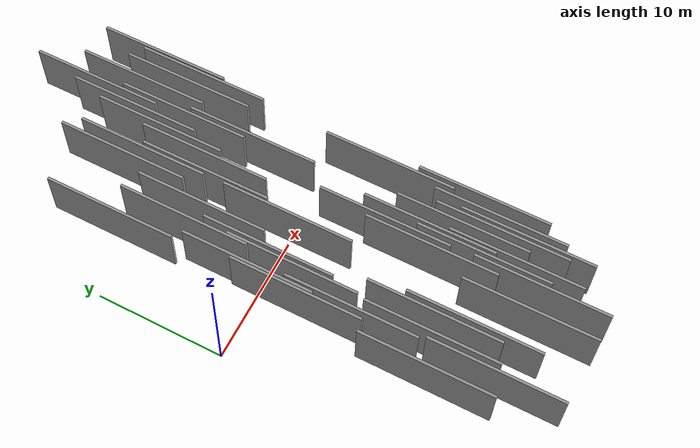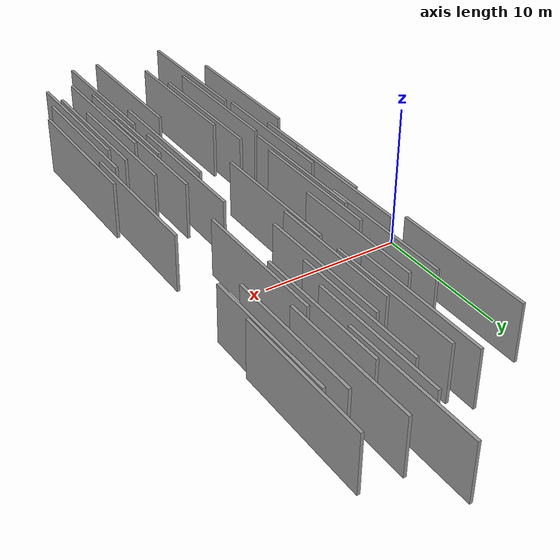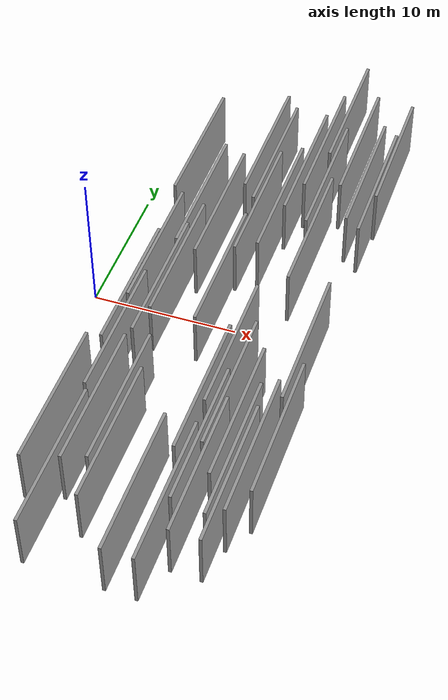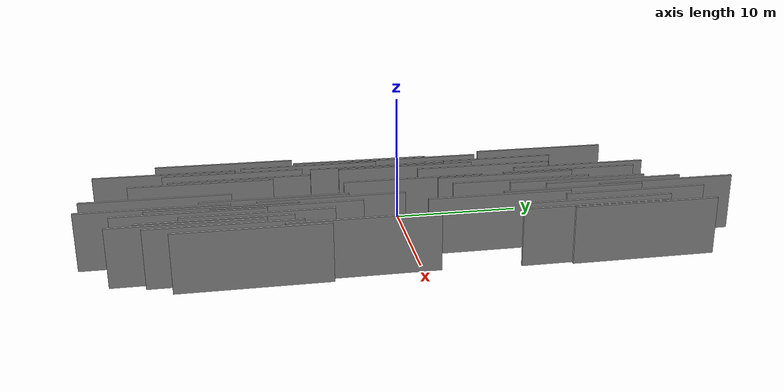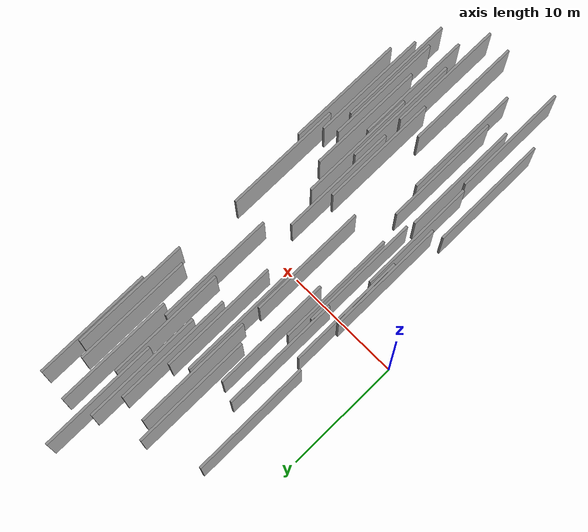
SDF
<sdf version="1.6">
 <world name="default">
  <scene>
   <sky><clouds><speed>12</speed></clouds></sky>
   <ambient>0.4 0.4 0.4 1</ambient>
   <background>0.7 0.7 0.7 1</background>
   <shadows>1</shadows>
  </scene>
  <gravity>0 0 -9.8066</gravity>
  <magnetic_field>6e-06 2.3e-05 -4.2e-05</magnetic_field>
  <physics default="0" name="default_physics" type="ode">
   <ode>
    <solver>
     <type>quick</type>
     <iters>10</iters>
     <sor>1.0</sor>
     <use_dynamic_moi_rescaling>0</use_dynamic_moi_rescaling>
    </solver>
    <constraints>
     <cfm>0</cfm>
     <erp>0.2</erp>
     <contact_max_correcting_vel>100</contact_max_correcting_vel>
     <contact_surface_layer>0.001</contact_surface_layer>
    </constraints>
   </ode>
   <max_step_size>0.004</max_step_size>
   <real_time_factor>1</real_time_factor>
   <real_time_update_rate>250</real_time_update_rate>
  </physics>
  <light name="sun" type="directional">
   <pose>0 0 10 0 0 0</pose>
   <diffuse>0.8 0.8 0.8 1</diffuse>
   <specular>0.2 0.2 0.2 1</specular>
   <attenuation>
    <range>1000</range>
    <constant>0.9</constant>
    <linear>0.01</linear>
    <quadratic>0.001</quadratic>
   </attenuation>
   <direction>-0.5 0.1 -0.9</direction>
  </light>
  <model name="grey_wall_1">
   <static>1</static>
   <pose>12.0063 13.5859 2.5 0.000000 0.000000 1.570796</pose>
   <link name="link">
    <pose>0 0 2.00 0 0 0</pose>
    <collision name="collision"><geometry><box><size>10.00 0.2 4.00</size></box></geometry></collision>
    <visual name="visual">
     <cast_shadows>0</cast_shadows>
     <geometry><box><size>10.00 0.2 4.00</size></box></geometry>
     <material>
      <script>
       <uri>model://grey_wall/materials/scripts</uri>
       <uri>model://grey_wall/materials/textures</uri>
       <name>vrc/grey_wall</name>
      </script>
     </material>
    </visual>
   </link>
  </model>
  <model name="grey_wall_2">
   <static>1</static>
   <pose>5.9091 -2.4661 2.5 0.000000 0.000000 1.570796</pose>
   <link name="link">
    <pose>0 0 2.00 0 0 0</pose>
    <collision name="collision"><geometry><box><size>10.00 0.2 4.00</size></box></geometry></collision>
    <visual name="visual">
     <cast_shadows>0</cast_shadows>
     <geometry><box><size>10.00 0.2 4.00</size></box></geometry>
     <material>
      <script>
       <uri>model://grey_wall/materials/scripts</uri>
       <uri>model://grey_wall/materials/textures</uri>
       <name>vrc/grey_wall</name>
      </script>
     </material>
    </visual>
   </link>
  </model>
  <model name="grey_wall_3">
   <static>1</static>
   <pose>13.2497 -15.8099 2.5 0.000000 0.000000 1.570796</pose>
   <link name="link">
    <pose>0 0 2.00 0 0 0</pose>
    <collision name="collision"><geometry><box><size>10.00 0.2 4.00</size></box></geometry></collision>
    <visual name="visual">
     <cast_shadows>0</cast_shadows>
     <geometry><box><size>10.00 0.2 4.00</size></box></geometry>
     <material>
      <script>
       <uri>model://grey_wall/materials/scripts</uri>
       <uri>model://grey_wall/materials/textures</uri>
       <name>vrc/grey_wall</name>
      </script>
     </material>
    </visual>
   </link>
  </model>
  <model name="grey_wall_4">
   <static>1</static>
   <pose>9.2239 -0.3779 2.5 0.000000 0.000000 1.570796</pose>
   <link name="link">
    <pose>0 0 2.00 0 0 0</pose>
    <collision name="collision"><geometry><box><size>10.00 0.2 4.00</size></box></geometry></collision>
    <visual name="visual">
     <cast_shadows>0</cast_shadows>
     <geometry><box><size>10.00 0.2 4.00</size></box></geometry>
     <material>
      <script>
       <uri>model://grey_wall/materials/scripts</uri>
       <uri>model://grey_wall/materials/textures</uri>
       <name>vrc/grey_wall</name>
      </script>
     </material>
    </visual>
   </link>
  </model>
  <model name="grey_wall_5">
   <static>1</static>
   <pose>12.7220 17.2323 2.5 0.000000 0.000000 1.570796</pose>
   <link name="link">
    <pose>0 0 2.00 0 0 0</pose>
    <collision name="collision"><geometry><box><size>10.00 0.2 4.00</size></box></geometry></collision>
    <visual name="visual">
     <cast_shadows>0</cast_shadows>
     <geometry><box><size>10.00 0.2 4.00</size></box></geometry>
     <material>
      <script>
       <uri>model://grey_wall/materials/scripts</uri>
       <uri>model://grey_wall/materials/textures</uri>
       <name>vrc/grey_wall</name>
      </script>
     </material>
    </visual>
   </link>
  </model>
  <model name="grey_wall_6">
   <static>1</static>
   <pose>5.1721 -17.8928 2.5 0.000000 0.000000 1.570796</pose>
   <link name="link">
    <pose>0 0 2.00 0 0 0</pose>
    <collision name="collision"><geometry><box><size>10.00 0.2 4.00</size></box></geometry></collision>
    <visual name="visual">
     <cast_shadows>0</cast_shadows>
     <geometry><box><size>10.00 0.2 4.00</size></box></geometry>
     <material>
      <script>
       <uri>model://grey_wall/materials/scripts</uri>
       <uri>model://grey_wall/materials/textures</uri>
       <name>vrc/grey_wall</name>
      </script>
     </material>
    </visual>
   </link>
  </model>
  <model name="grey_wall_7">
   <static>1</static>
   <pose>11.5215 -10.2824 2.5 0.000000 0.000000 1.570796</pose>
   <link name="link">
    <pose>0 0 2.00 0 0 0</pose>
    <collision name="collision"><geometry><box><size>10.00 0.2 4.00</size></box></geometry></collision>
    <visual name="visual">
     <cast_shadows>0</cast_shadows>
     <geometry><box><size>10.00 0.2 4.00</size></box></geometry>
     <material>
      <script>
       <uri>model://grey_wall/materials/scripts</uri>
       <uri>model://grey_wall/materials/textures</uri>
       <name>vrc/grey_wall</name>
      </script>
     </material>
    </visual>
   </link>
  </model>
  <model name="grey_wall_8">
   <static>1</static>
   <pose>10.8162 7.1400 2.5 0.000000 0.000000 1.570796</pose>
   <link name="link">
    <pose>0 0 2.00 0 0 0</pose>
    <collision name="collision"><geometry><box><size>10.00 0.2 4.00</size></box></geometry></collision>
    <visual name="visual">
     <cast_shadows>0</cast_shadows>
     <geometry><box><size>10.00 0.2 4.00</size></box></geometry>
     <material>
      <script>
       <uri>model://grey_wall/materials/scripts</uri>
       <uri>model://grey_wall/materials/textures</uri>
       <name>vrc/grey_wall</name>
      </script>
     </material>
    </visual>
   </link>
  </model>
  <model name="grey_wall_9">
   <static>1</static>
   <pose>9.5311 6.3362 2.5 0.000000 0.000000 1.570796</pose>
   <link name="link">
    <pose>0 0 2.00 0 0 0</pose>
    <collision name="collision"><geometry><box><size>10.00 0.2 4.00</size></box></geometry></collision>
    <visual name="visual">
     <cast_shadows>0</cast_shadows>
     <geometry><box><size>10.00 0.2 4.00</size></box></geometry>
     <material>
      <script>
       <uri>model://grey_wall/materials/scripts</uri>
       <uri>model://grey_wall/materials/textures</uri>
       <name>vrc/grey_wall</name>
      </script>
     </material>
    </visual>
   </link>
  </model>
  <model name="grey_wall_10">
   <static>1</static>
   <pose>14.3169 14.2576 2.5 0.000000 0.000000 1.570796</pose>
   <link name="link">
    <pose>0 0 2.00 0 0 0</pose>
    <collision name="collision"><geometry><box><size>10.00 0.2 4.00</size></box></geometry></collision>
    <visual name="visual">
     <cast_shadows>0</cast_shadows>
     <geometry><box><size>10.00 0.2 4.00</size></box></geometry>
     <material>
      <script>
       <uri>model://grey_wall/materials/scripts</uri>
       <uri>model://grey_wall/materials/textures</uri>
       <name>vrc/grey_wall</name>
      </script>
     </material>
    </visual>
   </link>
  </model>
  <model name="grey_wall_11">
   <static>1</static>
   <pose>12.9523 -9.4667 2.5 0.000000 0.000000 1.570796</pose>
   <link name="link">
    <pose>0 0 2.00 0 0 0</pose>
    <collision name="collision"><geometry><box><size>10.00 0.2 4.00</size></box></geometry></collision>
    <visual name="visual">
     <cast_shadows>0</cast_shadows>
     <geometry><box><size>10.00 0.2 4.00</size></box></geometry>
     <material>
      <script>
       <uri>model://grey_wall/materials/scripts</uri>
       <uri>model://grey_wall/materials/textures</uri>
       <name>vrc/grey_wall</name>
      </script>
     </material>
    </visual>
   </link>
  </model>
  <model name="grey_wall_12">
   <static>1</static>
   <pose>7.1455 -12.5662 2.5 0.000000 0.000000 1.570796</pose>
   <link name="link">
    <pose>0 0 2.00 0 0 0</pose>
    <collision name="collision"><geometry><box><size>10.00 0.2 4.00</size></box></geometry></collision>
    <visual name="visual">
     <cast_shadows>0</cast_shadows>
     <geometry><box><size>10.00 0.2 4.00</size></box></geometry>
     <material>
      <script>
       <uri>model://grey_wall/materials/scripts</uri>
       <uri>model://grey_wall/materials/textures</uri>
       <name>vrc/grey_wall</name>
      </script>
     </material>
    </visual>
   </link>
  </model>
  <model name="grey_wall_13">
   <static>1</static>
   <pose>11.3913 11.1319 2.5 0.000000 0.000000 1.570796</pose>
   <link name="link">
    <pose>0 0 2.00 0 0 0</pose>
    <collision name="collision"><geometry><box><size>10.00 0.2 4.00</size></box></geometry></collision>
    <visual name="visual">
     <cast_shadows>0</cast_shadows>
     <geometry><box><size>10.00 0.2 4.00</size></box></geometry>
     <material>
      <script>
       <uri>model://grey_wall/materials/scripts</uri>
       <uri>model://grey_wall/materials/textures</uri>
       <name>vrc/grey_wall</name>
      </script>
     </material>
    </visual>
   </link>
  </model>
  <model name="grey_wall_14">
   <static>1</static>
   <pose>4.3407 -3.6009 2.5 0.000000 0.000000 1.570796</pose>
   <link name="link">
    <pose>0 0 2.00 0 0 0</pose>
    <collision name="collision"><geometry><box><size>10.00 0.2 4.00</size></box></geometry></collision>
    <visual name="visual">
     <cast_shadows>0</cast_shadows>
     <geometry><box><size>10.00 0.2 4.00</size></box></geometry>
     <material>
      <script>
       <uri>model://grey_wall/materials/scripts</uri>
       <uri>model://grey_wall/materials/textures</uri>
       <name>vrc/grey_wall</name>
      </script>
     </material>
    </visual>
   </link>
  </model>
  <model name="grey_wall_15">
   <static>1</static>
   <pose>10.2185 -18.1284 2.5 0.000000 0.000000 1.570796</pose>
   <link name="link">
    <pose>0 0 2.00 0 0 0</pose>
    <collision name="collision"><geometry><box><size>10.00 0.2 4.00</size></box></geometry></collision>
    <visual name="visual">
     <cast_shadows>0</cast_shadows>
     <geometry><box><size>10.00 0.2 4.00</size></box></geometry>
     <material>
      <script>
       <uri>model://grey_wall/materials/scripts</uri>
       <uri>model://grey_wall/materials/textures</uri>
       <name>vrc/grey_wall</name>
      </script>
     </material>
    </visual>
   </link>
  </model>
  <model name="grey_wall_16">
   <static>1</static>
   <pose>9.1690 11.2508 2.5 0.000000 0.000000 1.570796</pose>
   <link name="link">
    <pose>0 0 2.00 0 0 0</pose>
    <collision name="collision"><geometry><box><size>10.00 0.2 4.00</size></box></geometry></collision>
    <visual name="visual">
     <cast_shadows>0</cast_shadows>
     <geometry><box><size>10.00 0.2 4.00</size></box></geometry>
     <material>
      <script>
       <uri>model://grey_wall/materials/scripts</uri>
       <uri>model://grey_wall/materials/textures</uri>
       <name>vrc/grey_wall</name>
      </script>
     </material>
    </visual>
   </link>
  </model>
  <model name="grey_wall_17">
   <static>1</static>
   <pose>16.8760 13.9712 2.5 0.000000 0.000000 1.570796</pose>
   <link name="link">
    <pose>0 0 2.00 0 0 0</pose>
    <collision name="collision"><geometry><box><size>10.00 0.2 4.00</size></box></geometry></collision>
    <visual name="visual">
     <cast_shadows>0</cast_shadows>
     <geometry><box><size>10.00 0.2 4.00</size></box></geometry>
     <material>
      <script>
       <uri>model://grey_wall/materials/scripts</uri>
       <uri>model://grey_wall/materials/textures</uri>
       <name>vrc/grey_wall</name>
      </script>
     </material>
    </visual>
   </link>
  </model>
  <model name="grey_wall_18">
   <static>1</static>
   <pose>3.8398 10.6690 2.5 0.000000 0.000000 1.570796</pose>
   <link name="link">
    <pose>0 0 2.00 0 0 0</pose>
    <collision name="collision"><geometry><box><size>10.00 0.2 4.00</size></box></geometry></collision>
    <visual name="visual">
     <cast_shadows>0</cast_shadows>
     <geometry><box><size>10.00 0.2 4.00</size></box></geometry>
     <material>
      <script>
       <uri>model://grey_wall/materials/scripts</uri>
       <uri>model://grey_wall/materials/textures</uri>
       <name>vrc/grey_wall</name>
      </script>
     </material>
    </visual>
   </link>
  </model>
  <model name="grey_wall_19">
   <static>1</static>
   <pose>13.1487 10.1873 2.5 0.000000 0.000000 1.570796</pose>
   <link name="link">
    <pose>0 0 2.00 0 0 0</pose>
    <collision name="collision"><geometry><box><size>10.00 0.2 4.00</size></box></geometry></collision>
    <visual name="visual">
     <cast_shadows>0</cast_shadows>
     <geometry><box><size>10.00 0.2 4.00</size></box></geometry>
     <material>
      <script>
       <uri>model://grey_wall/materials/scripts</uri>
       <uri>model://grey_wall/materials/textures</uri>
       <name>vrc/grey_wall</name>
      </script>
     </material>
    </visual>
   </link>
  </model>
  <model name="grey_wall_20">
   <static>1</static>
   <pose>16.6032 10.5202 2.5 0.000000 0.000000 1.570796</pose>
   <link name="link">
    <pose>0 0 2.00 0 0 0</pose>
    <collision name="collision"><geometry><box><size>10.00 0.2 4.00</size></box></geometry></collision>
    <visual name="visual">
     <cast_shadows>0</cast_shadows>
     <geometry><box><size>10.00 0.2 4.00</size></box></geometry>
     <material>
      <script>
       <uri>model://grey_wall/materials/scripts</uri>
       <uri>model://grey_wall/materials/textures</uri>
       <name>vrc/grey_wall</name>
      </script>
     </material>
    </visual>
   </link>
  </model>
  <model name="grey_wall_21">
   <static>1</static>
   <pose>16.7167 -11.8867 2.5 0.000000 0.000000 1.570796</pose>
   <link name="link">
    <pose>0 0 2.00 0 0 0</pose>
    <collision name="collision"><geometry><box><size>10.00 0.2 4.00</size></box></geometry></collision>
    <visual name="visual">
     <cast_shadows>0</cast_shadows>
     <geometry><box><size>10.00 0.2 4.00</size></box></geometry>
     <material>
      <script>
       <uri>model://grey_wall/materials/scripts</uri>
       <uri>model://grey_wall/materials/textures</uri>
       <name>vrc/grey_wall</name>
      </script>
     </material>
    </visual>
   </link>
  </model>
  <model name="grey_wall_22">
   <static>1</static>
   <pose>3.4434 -13.6741 2.5 0.000000 0.000000 1.570796</pose>
   <link name="link">
    <pose>0 0 2.00 0 0 0</pose>
    <collision name="collision"><geometry><box><size>10.00 0.2 4.00</size></box></geometry></collision>
    <visual name="visual">
     <cast_shadows>0</cast_shadows>
     <geometry><box><size>10.00 0.2 4.00</size></box></geometry>
     <material>
      <script>
       <uri>model://grey_wall/materials/scripts</uri>
       <uri>model://grey_wall/materials/textures</uri>
       <name>vrc/grey_wall</name>
      </script>
     </material>
    </visual>
   </link>
  </model>
  <model name="grey_wall_23">
   <static>1</static>
   <pose>12.0294 -6.4774 2.5 0.000000 0.000000 1.570796</pose>
   <link name="link">
    <pose>0 0 2.00 0 0 0</pose>
    <collision name="collision"><geometry><box><size>10.00 0.2 4.00</size></box></geometry></collision>
    <visual name="visual">
     <cast_shadows>0</cast_shadows>
     <geometry><box><size>10.00 0.2 4.00</size></box></geometry>
     <material>
      <script>
       <uri>model://grey_wall/materials/scripts</uri>
       <uri>model://grey_wall/materials/textures</uri>
       <name>vrc/grey_wall</name>
      </script>
     </material>
    </visual>
   </link>
  </model>
  <model name="grey_wall_24">
   <static>1</static>
   <pose>12.1651 -18.1737 2.5 0.000000 0.000000 1.570796</pose>
   <link name="link">
    <pose>0 0 2.00 0 0 0</pose>
    <collision name="collision"><geometry><box><size>10.00 0.2 4.00</size></box></geometry></collision>
    <visual name="visual">
     <cast_shadows>0</cast_shadows>
     <geometry><box><size>10.00 0.2 4.00</size></box></geometry>
     <material>
      <script>
       <uri>model://grey_wall/materials/scripts</uri>
       <uri>model://grey_wall/materials/textures</uri>
       <name>vrc/grey_wall</name>
      </script>
     </material>
    </visual>
   </link>
  </model>
  <model name="grey_wall_25">
   <static>1</static>
   <pose>15.1448 -15.8815 2.5 0.000000 0.000000 1.570796</pose>
   <link name="link">
    <pose>0 0 2.00 0 0 0</pose>
    <collision name="collision"><geometry><box><size>10.00 0.2 4.00</size></box></geometry></collision>
    <visual name="visual">
     <cast_shadows>0</cast_shadows>
     <geometry><box><size>10.00 0.2 4.00</size></box></geometry>
     <material>
      <script>
       <uri>model://grey_wall/materials/scripts</uri>
       <uri>model://grey_wall/materials/textures</uri>
       <name>vrc/grey_wall</name>
      </script>
     </material>
    </visual>
   </link>
  </model>
  <model name="grey_wall_26">
   <static>1</static>
   <pose>16.2576 -4.8201 2.5 0.000000 0.000000 1.570796</pose>
   <link name="link">
    <pose>0 0 2.00 0 0 0</pose>
    <collision name="collision"><geometry><box><size>10.00 0.2 4.00</size></box></geometry></collision>
    <visual name="visual">
     <cast_shadows>0</cast_shadows>
     <geometry><box><size>10.00 0.2 4.00</size></box></geometry>
     <material>
      <script>
       <uri>model://grey_wall/materials/scripts</uri>
       <uri>model://grey_wall/materials/textures</uri>
       <name>vrc/grey_wall</name>
      </script>
     </material>
    </visual>
   </link>
  </model>
  <model name="grey_wall_27">
   <static>1</static>
   <pose>4.8833 -7.4848 2.5 0.000000 0.000000 1.570796</pose>
   <link name="link">
    <pose>0 0 2.00 0 0 0</pose>
    <collision name="collision"><geometry><box><size>10.00 0.2 4.00</size></box></geometry></collision>
    <visual name="visual">
     <cast_shadows>0</cast_shadows>
     <geometry><box><size>10.00 0.2 4.00</size></box></geometry>
     <material>
      <script>
       <uri>model://grey_wall/materials/scripts</uri>
       <uri>model://grey_wall/materials/textures</uri>
       <name>vrc/grey_wall</name>
      </script>
     </material>
    </visual>
   </link>
  </model>
  <model name="grey_wall_28">
   <static>1</static>
   <pose>15.5816 11.2316 2.5 0.000000 0.000000 1.570796</pose>
   <link name="link">
    <pose>0 0 2.00 0 0 0</pose>
    <collision name="collision"><geometry><box><size>10.00 0.2 4.00</size></box></geometry></collision>
    <visual name="visual">
     <cast_shadows>0</cast_shadows>
     <geometry><box><size>10.00 0.2 4.00</size></box></geometry>
     <material>
      <script>
       <uri>model://grey_wall/materials/scripts</uri>
       <uri>model://grey_wall/materials/textures</uri>
       <name>vrc/grey_wall</name>
      </script>
     </material>
    </visual>
   </link>
  </model>
  <model name="grey_wall_29">
   <static>1</static>
   <pose>5.7026 -13.0424 2.5 0.000000 0.000000 1.570796</pose>
   <link name="link">
    <pose>0 0 2.00 0 0 0</pose>
    <collision name="collision"><geometry><box><size>10.00 0.2 4.00</size></box></geometry></collision>
    <visual name="visual">
     <cast_shadows>0</cast_shadows>
     <geometry><box><size>10.00 0.2 4.00</size></box></geometry>
     <material>
      <script>
       <uri>model://grey_wall/materials/scripts</uri>
       <uri>model://grey_wall/materials/textures</uri>
       <name>vrc/grey_wall</name>
      </script>
     </material>
    </visual>
   </link>
  </model>
  <model name="grey_wall_30">
   <static>1</static>
   <pose>14.0896 -11.4577 2.5 0.000000 0.000000 1.570796</pose>
   <link name="link">
    <pose>0 0 2.00 0 0 0</pose>
    <collision name="collision"><geometry><box><size>10.00 0.2 4.00</size></box></geometry></collision>
    <visual name="visual">
     <cast_shadows>0</cast_shadows>
     <geometry><box><size>10.00 0.2 4.00</size></box></geometry>
     <material>
      <script>
       <uri>model://grey_wall/materials/scripts</uri>
       <uri>model://grey_wall/materials/textures</uri>
       <name>vrc/grey_wall</name>
      </script>
     </material>
    </visual>
   </link>
  </model>
  <model name="grey_wall_31">
   <static>1</static>
   <pose>5.7072 5.8696 2.5 0.000000 0.000000 1.570796</pose>
   <link name="link">
    <pose>0 0 2.00 0 0 0</pose>
    <collision name="collision"><geometry><box><size>10.00 0.2 4.00</size></box></geometry></collision>
    <visual name="visual">
     <cast_shadows>0</cast_shadows>
     <geometry><box><size>10.00 0.2 4.00</size></box></geometry>
     <material>
      <script>
       <uri>model://grey_wall/materials/scripts</uri>
       <uri>model://grey_wall/materials/textures</uri>
       <name>vrc/grey_wall</name>
      </script>
     </material>
    </visual>
   </link>
  </model>
  <model name="grey_wall_32">
   <static>1</static>
   <pose>4.5580 0.2365 2.5 0.000000 0.000000 1.570796</pose>
   <link name="link">
    <pose>0 0 2.00 0 0 0</pose>
    <collision name="collision"><geometry><box><size>10.00 0.2 4.00</size></box></geometry></collision>
    <visual name="visual">
     <cast_shadows>0</cast_shadows>
     <geometry><box><size>10.00 0.2 4.00</size></box></geometry>
     <material>
      <script>
       <uri>model://grey_wall/materials/scripts</uri>
       <uri>model://grey_wall/materials/textures</uri>
       <name>vrc/grey_wall</name>
      </script>
     </material>
    </visual>
   </link>
  </model>
  <model name="grey_wall_33">
   <static>1</static>
   <pose>12.5889 -13.7189 2.5 0.000000 0.000000 1.570796</pose>
   <link name="link">
    <pose>0 0 2.00 0 0 0</pose>
    <collision name="collision"><geometry><box><size>10.00 0.2 4.00</size></box></geometry></collision>
    <visual name="visual">
     <cast_shadows>0</cast_shadows>
     <geometry><box><size>10.00 0.2 4.00</size></box></geometry>
     <material>
      <script>
       <uri>model://grey_wall/materials/scripts</uri>
       <uri>model://grey_wall/materials/textures</uri>
       <name>vrc/grey_wall</name>
      </script>
     </material>
    </visual>
   </link>
  </model>
  <model name="grey_wall_34">
   <static>1</static>
   <pose>8.2272 12.3349 2.5 0.000000 0.000000 1.570796</pose>
   <link name="link">
    <pose>0 0 2.00 0 0 0</pose>
    <collision name="collision"><geometry><box><size>10.00 0.2 4.00</size></box></geometry></collision>
    <visual name="visual">
     <cast_shadows>0</cast_shadows>
     <geometry><box><size>10.00 0.2 4.00</size></box></geometry>
     <material>
      <script>
       <uri>model://grey_wall/materials/scripts</uri>
       <uri>model://grey_wall/materials/textures</uri>
       <name>vrc/grey_wall</name>
      </script>
     </material>
    </visual>
   </link>
  </model>
  <model name="grey_wall_35">
   <static>1</static>
   <pose>15.7305 -13.5724 2.5 0.000000 0.000000 1.570796</pose>
   <link name="link">
    <pose>0 0 2.00 0 0 0</pose>
    <collision name="collision"><geometry><box><size>10.00 0.2 4.00</size></box></geometry></collision>
    <visual name="visual">
     <cast_shadows>0</cast_shadows>
     <geometry><box><size>10.00 0.2 4.00</size></box></geometry>
     <material>
      <script>
       <uri>model://grey_wall/materials/scripts</uri>
       <uri>model://grey_wall/materials/textures</uri>
       <name>vrc/grey_wall</name>
      </script>
     </material>
    </visual>
   </link>
  </model>
  <model name="grey_wall_36">
   <static>1</static>
   <pose>7.1974 5.2907 2.5 0.000000 0.000000 1.570796</pose>
   <link name="link">
    <pose>0 0 2.00 0 0 0</pose>
    <collision name="collision"><geometry><box><size>10.00 0.2 4.00</size></box></geometry></collision>
    <visual name="visual">
     <cast_shadows>0</cast_shadows>
     <geometry><box><size>10.00 0.2 4.00</size></box></geometry>
     <material>
      <script>
       <uri>model://grey_wall/materials/scripts</uri>
       <uri>model://grey_wall/materials/textures</uri>
       <name>vrc/grey_wall</name>
      </script>
     </material>
    </visual>
   </link>
  </model>
  <model name="grey_wall_37">
   <static>1</static>
   <pose>6.3010 -0.4263 2.5 0.000000 0.000000 1.570796</pose>
   <link name="link">
    <pose>0 0 2.00 0 0 0</pose>
    <collision name="collision"><geometry><box><size>10.00 0.2 4.00</size></box></geometry></collision>
    <visual name="visual">
     <cast_shadows>0</cast_shadows>
     <geometry><box><size>10.00 0.2 4.00</size></box></geometry>
     <material>
      <script>
       <uri>model://grey_wall/materials/scripts</uri>
       <uri>model://grey_wall/materials/textures</uri>
       <name>vrc/grey_wall</name>
      </script>
     </material>
    </visual>
   </link>
  </model>
  <model name="grey_wall_38">
   <static>1</static>
   <pose>13.6157 4.8083 2.5 0.000000 0.000000 1.570796</pose>
   <link name="link">
    <pose>0 0 2.00 0 0 0</pose>
    <collision name="collision"><geometry><box><size>10.00 0.2 4.00</size></box></geometry></collision>
    <visual name="visual">
     <cast_shadows>0</cast_shadows>
     <geometry><box><size>10.00 0.2 4.00</size></box></geometry>
     <material>
      <script>
       <uri>model://grey_wall/materials/scripts</uri>
       <uri>model://grey_wall/materials/textures</uri>
       <name>vrc/grey_wall</name>
      </script>
     </material>
    </visual>
   </link>
  </model>
  <model name="grey_wall_39">
   <static>1</static>
   <pose>7.6310 -15.2319 2.5 0.000000 0.000000 1.570796</pose>
   <link name="link">
    <pose>0 0 2.00 0 0 0</pose>
    <collision name="collision"><geometry><box><size>10.00 0.2 4.00</size></box></geometry></collision>
    <visual name="visual">
     <cast_shadows>0</cast_shadows>
     <geometry><box><size>10.00 0.2 4.00</size></box></geometry>
     <material>
      <script>
       <uri>model://grey_wall/materials/scripts</uri>
       <uri>model://grey_wall/materials/textures</uri>
       <name>vrc/grey_wall</name>
      </script>
     </material>
    </visual>
   </link>
  </model>
  <model name="grey_wall_40">
   <static>1</static>
   <pose>14.7762 -14.1445 2.5 0.000000 0.000000 1.570796</pose>
   <link name="link">
    <pose>0 0 2.00 0 0 0</pose>
    <collision name="collision"><geometry><box><size>10.00 0.2 4.00</size></box></geometry></collision>
    <visual name="visual">
     <cast_shadows>0</cast_shadows>
     <geometry><box><size>10.00 0.2 4.00</size></box></geometry>
     <material>
      <script>
       <uri>model://grey_wall/materials/scripts</uri>
       <uri>model://grey_wall/materials/textures</uri>
       <name>vrc/grey_wall</name>
      </script>
     </material>
    </visual>
   </link>
  </model>
 </world>
</sdf>
